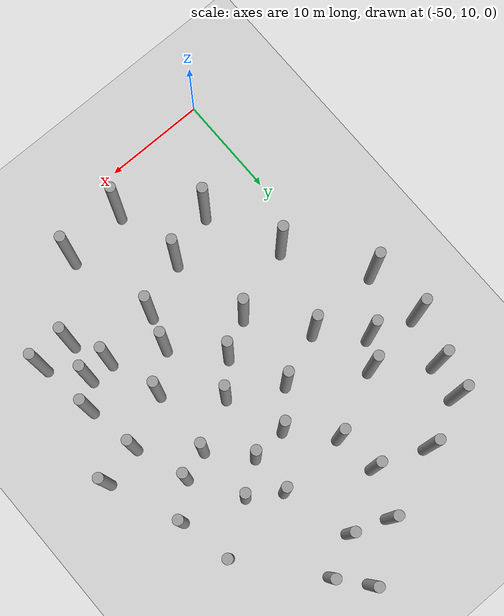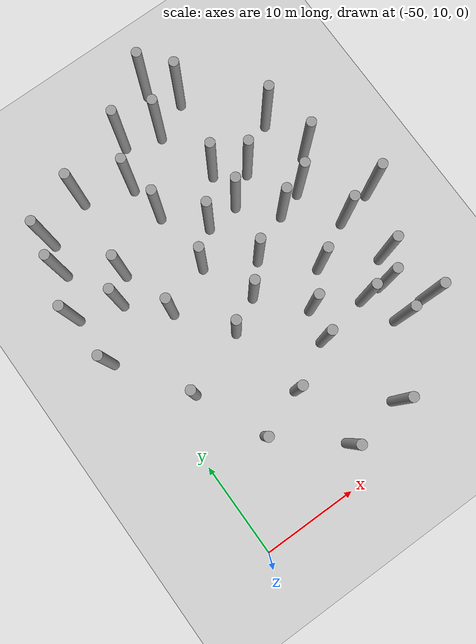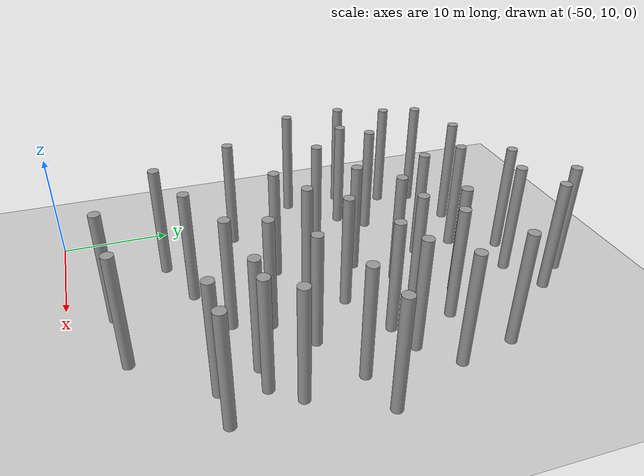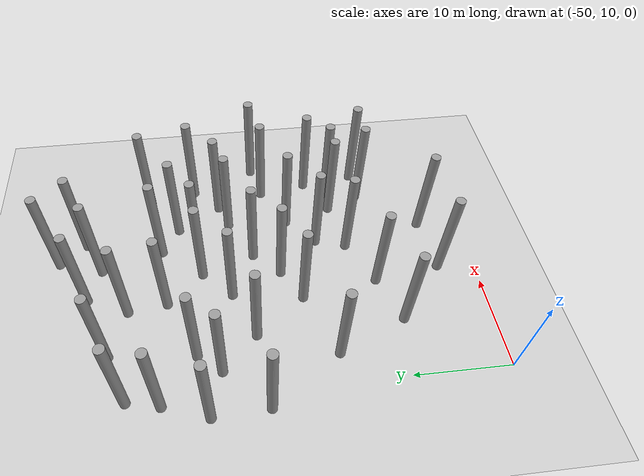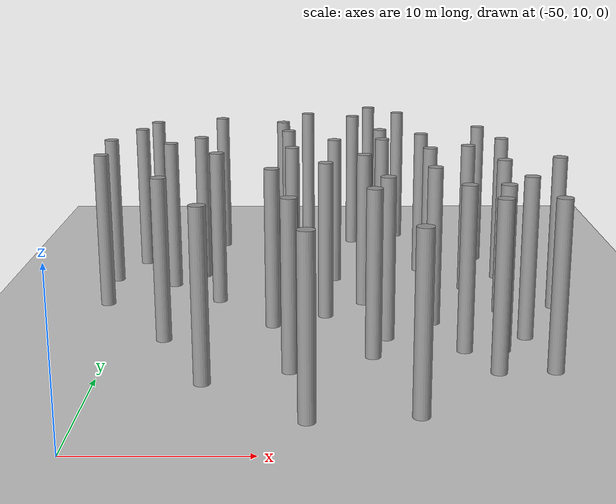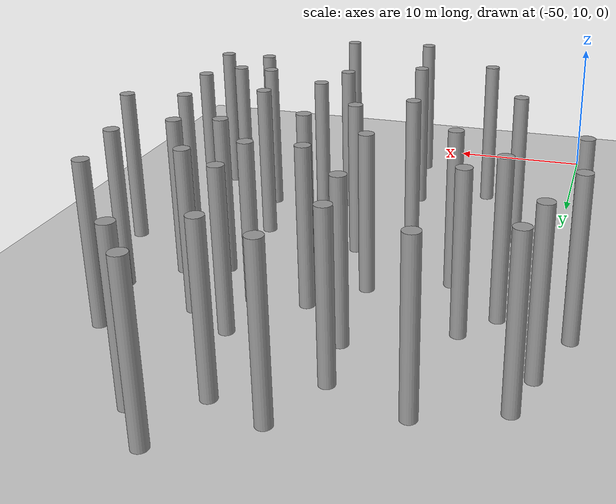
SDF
<sdf version="1.6">
 <world name="vrc_task_1">
  <model name="ground_plane">
   <static>1</static>
   <link name="link">
    <collision name="collision">
     <geometry><plane><normal>0 0 1</normal><size>100 100</size></plane></geometry>
     <surface><friction><ode><mu>100</mu><mu2>50</mu2></ode></friction></surface>
    </collision>
    <visual name="visual">
     <cast_shadows>0</cast_shadows>
     <geometry><plane><normal>0 0 1</normal><size>1000 1000</size></plane></geometry>
     <material>
      <script><uri>file://media/materials/scripts/gazebo.material</uri><name>Gazebo/Grey</name></script>
     </material>
    </visual>
    <velocity_decay><linear>0</linear><angular>0</angular></velocity_decay>
   </link>
  </model>
  <scene>
   <ambient>0.2 0.2 0.2 1</ambient>
   <grid>0</grid>
   <background>0.7 0.7 0.7 1</background>
   <shadows>1</shadows>
  </scene>
  <physics name="default_physics" default="0" type="ode">
   <ode>
    <solver>
     <type>quick</type>
     <iters>50</iters>
     <sor>1.4</sor>
     <use_dynamic_moi_rescaling>0</use_dynamic_moi_rescaling>
    </solver>
    <constraints>
     <cfm>0</cfm>
     <erp>0.2</erp>
     <contact_max_correcting_vel>100</contact_max_correcting_vel>
     <contact_surface_layer>0</contact_surface_layer>
    </constraints>
   </ode>
   <real_time_update_rate>1000</real_time_update_rate>
   <max_step_size>0.001</max_step_size>
   <real_time_factor>1</real_time_factor>
  </physics>
  <light name="sun" type="directional">
   <cast_shadows>0</cast_shadows>
   <pose>0 0 100 0 -0 0</pose>
   <diffuse>0.8 0.8 0.8 1</diffuse>
   <specular>0.9 0.9 0.9 1</specular>
   <attenuation>
    <range>1000</range>
    <constant>0.9</constant>
    <linear>0.01</linear>
    <quadratic>0.001</quadratic>
   </attenuation>
   <direction>0.2 0.2 -0.9</direction>
  </light>
  <model name="road_boxes">
   <static>1</static>
   <link name="link">
    <collision name="collision_1">
     <pose>51 0 0 0 -0 0</pose>
     <geometry><box><size>102 7.34 0.02</size></box></geometry>
     <surface><friction><ode><mu>100</mu><mu2>50</mu2></ode></friction></surface>
    </collision>
    <collision name="collision_2">
     <pose>125 25 0 0 -0 0.78539</pose>
     <geometry><box><size>72 7.34 0.02</size></box></geometry>
     <surface><friction><ode><mu>100</mu><mu2>50</mu2></ode></friction></surface>
    </collision>
    <collision name="collision_3">
     <pose>150 75 0 0 -0 0</pose>
     <geometry><box><size>7.34 53 0.02</size></box></geometry>
     <surface><friction><ode><mu>100</mu><mu2>50</mu2></ode></friction></surface>
    </collision>
    <collision name="collision_4">
     <pose>173.5 100 0 0 -0 0</pose>
     <geometry><box><size>54.5 7.34 0.02</size></box></geometry>
     <surface><friction><ode><mu>100</mu><mu2>50</mu2></ode></friction></surface>
    </collision>
    <collision name="collision_5">
     <pose>198 106 0 0 -0 0</pose>
     <geometry><box><size>6 5 0.02</size></box></geometry>
     <surface><friction><ode><mu>100</mu><mu2>50</mu2></ode></friction></surface>
    </collision>
   </link>
  </model>
  <gravity>0 0 -9.81</gravity>
  <magnetic_field>6e-06 2.3e-05 -4.2e-05</magnetic_field>
  <atmosphere type="adiabatic"/>
  <spherical_coordinates>
   <surface_model>EARTH_WGS84</surface_model>
   <latitude_deg>0</latitude_deg>
   <longitude_deg>0</longitude_deg>
   <elevation>0</elevation>
   <heading_deg>0</heading_deg>
  </spherical_coordinates>
  <model name="unit_cylinder_0">
   <pose>-22.9876 21.0141 5.29387 0 0 -0.003314</pose>
   <link name="link">
    <inertial>
     <mass>1</mass>
     <inertia><ixx>0.145833</ixx><ixy>0</ixy><ixz>0</ixz><iyy>0.145833</iyy><iyz>0</iyz><izz>0.125</izz></inertia>
    </inertial>
    <collision name="collision">
     <geometry><cylinder><radius>0.5</radius><length>10.5878</length></cylinder></geometry>
    </collision>
    <visual name="visual">
     <geometry><cylinder><radius>0.5</radius><length>10.5878</length></cylinder></geometry>
     <material>
      <script><name>Gazebo/Grey</name><uri>file://media/materials/scripts/gazebo.material</uri></script>
     </material>
    </visual>
   </link>
  </model>
  <model name="unit_cylinder_0_clone">
   <pose>-26.3539 20.884 5.2939 0 0 -0.003554</pose>
   <link name="link">
    <inertial>
     <mass>1</mass>
     <inertia><ixx>0.145833</ixx><ixy>0</ixy><ixz>0</ixz><iyy>0.145833</iyy><iyz>0</iyz><izz>0.125</izz></inertia>
    </inertial>
    <collision name="collision">
     <geometry><cylinder><radius>0.5</radius><length>10.5878</length></cylinder></geometry>
    </collision>
    <visual name="visual">
     <geometry><cylinder><radius>0.5</radius><length>10.5878</length></cylinder></geometry>
     <material>
      <script><name>Gazebo/Grey</name><uri>file://media/materials/scripts/gazebo.material</uri></script>
     </material>
    </visual>
   </link>
  </model>
  <model name="unit_cylinder_0_clone_0">
   <pose>-25.5903 24.5493 5.29389 0 0 -0.003437</pose>
   <link name="link">
    <inertial>
     <mass>1</mass>
     <inertia><ixx>0.145833</ixx><ixy>0</ixy><ixz>0</ixz><iyy>0.145833</iyy><iyz>0</iyz><izz>0.125</izz></inertia>
    </inertial>
    <collision name="collision">
     <geometry><cylinder><radius>0.5</radius><length>10.5878</length></cylinder></geometry>
    </collision>
    <visual name="visual">
     <geometry><cylinder><radius>0.5</radius><length>10.5878</length></cylinder></geometry>
     <material>
      <script><name>Gazebo/Grey</name><uri>file://media/materials/scripts/gazebo.material</uri></script>
     </material>
    </visual>
   </link>
  </model>
  <model name="unit_cylinder_0_clone_1">
   <pose>-27.9608 24.4871 5.2939 0 0 -0.003528</pose>
   <link name="link">
    <inertial>
     <mass>1</mass>
     <inertia><ixx>0.145833</ixx><ixy>0</ixy><ixz>0</ixz><iyy>0.145833</iyy><iyz>0</iyz><izz>0.125</izz></inertia>
    </inertial>
    <collision name="collision">
     <geometry><cylinder><radius>0.5</radius><length>10.5878</length></cylinder></geometry>
    </collision>
    <visual name="visual">
     <geometry><cylinder><radius>0.5</radius><length>10.5878</length></cylinder></geometry>
     <material>
      <script><name>Gazebo/Grey</name><uri>file://media/materials/scripts/gazebo.material</uri></script>
     </material>
    </visual>
   </link>
  </model>
  <model name="unit_cylinder_0_clone_2">
   <pose>-23.7982 26.8468 5.2939 0 0 -0.003634</pose>
   <link name="link">
    <inertial>
     <mass>1</mass>
     <inertia><ixx>0.145833</ixx><ixy>0</ixy><ixz>0</ixz><iyy>0.145833</iyy><iyz>0</iyz><izz>0.125</izz></inertia>
    </inertial>
    <collision name="collision">
     <geometry><cylinder><radius>0.5</radius><length>10.5878</length></cylinder></geometry>
    </collision>
    <visual name="visual">
     <geometry><cylinder><radius>0.5</radius><length>10.5878</length></cylinder></geometry>
     <material>
      <script><name>Gazebo/Grey</name><uri>file://media/materials/scripts/gazebo.material</uri></script>
     </material>
    </visual>
   </link>
  </model>
  <model name="unit_cylinder_0_clone_3">
   <pose>-33.6825 23.513 5.2939 0 0 -0.00354</pose>
   <link name="link">
    <inertial>
     <mass>1</mass>
     <inertia><ixx>0.145833</ixx><ixy>0</ixy><ixz>0</ixz><iyy>0.145833</iyy><iyz>0</iyz><izz>0.125</izz></inertia>
    </inertial>
    <collision name="collision">
     <geometry><cylinder><radius>0.5</radius><length>10.5878</length></cylinder></geometry>
    </collision>
    <visual name="visual">
     <geometry><cylinder><radius>0.5</radius><length>10.5878</length></cylinder></geometry>
     <material>
      <script><name>Gazebo/Grey</name><uri>file://media/materials/scripts/gazebo.material</uri></script>
     </material>
    </visual>
   </link>
  </model>
  <model name="unit_cylinder_0_clone_4">
   <pose>-32.6982 26.7672 5.2939 0 0 -0.00327</pose>
   <link name="link">
    <inertial>
     <mass>1</mass>
     <inertia><ixx>0.145833</ixx><ixy>0</ixy><ixz>0</ixz><iyy>0.145833</iyy><iyz>0</iyz><izz>0.125</izz></inertia>
    </inertial>
    <collision name="collision">
     <geometry><cylinder><radius>0.5</radius><length>10.5878</length></cylinder></geometry>
    </collision>
    <visual name="visual">
     <geometry><cylinder><radius>0.5</radius><length>10.5878</length></cylinder></geometry>
     <material>
      <script><name>Gazebo/Grey</name><uri>file://media/materials/scripts/gazebo.material</uri></script>
     </material>
    </visual>
   </link>
  </model>
  <model name="unit_cylinder_0_clone_5">
   <pose>-29.5022 29.7005 5.29389 0 0 -0.003437</pose>
   <link name="link">
    <inertial>
     <mass>1</mass>
     <inertia><ixx>0.145833</ixx><ixy>0</ixy><ixz>0</ixz><iyy>0.145833</iyy><iyz>0</iyz><izz>0.125</izz></inertia>
    </inertial>
    <collision name="collision">
     <geometry><cylinder><radius>0.5</radius><length>10.5878</length></cylinder></geometry>
    </collision>
    <visual name="visual">
     <geometry><cylinder><radius>0.5</radius><length>10.5878</length></cylinder></geometry>
     <material>
      <script><name>Gazebo/Grey</name><uri>file://media/materials/scripts/gazebo.material</uri></script>
     </material>
    </visual>
   </link>
  </model>
  <model name="unit_cylinder_0_clone_6">
   <pose>-24.6878 32.1207 5.2939 0 0 -0.003766</pose>
   <link name="link">
    <inertial>
     <mass>1</mass>
     <inertia><ixx>0.145833</ixx><ixy>0</ixy><ixz>0</ixz><iyy>0.145833</iyy><iyz>0</iyz><izz>0.125</izz></inertia>
    </inertial>
    <collision name="collision">
     <geometry><cylinder><radius>0.5</radius><length>10.5878</length></cylinder></geometry>
    </collision>
    <visual name="visual">
     <geometry><cylinder><radius>0.5</radius><length>10.5878</length></cylinder></geometry>
     <material>
      <script><name>Gazebo/Grey</name><uri>file://media/materials/scripts/gazebo.material</uri></script>
     </material>
    </visual>
   </link>
  </model>
  <model name="unit_cylinder_0_clone_7">
   <pose>-29.2495 36.3199 5.29389 0 0 -0.003343</pose>
   <link name="link">
    <inertial>
     <mass>1</mass>
     <inertia><ixx>0.145833</ixx><ixy>0</ixy><ixz>0</ixz><iyy>0.145833</iyy><iyz>0</iyz><izz>0.125</izz></inertia>
    </inertial>
    <collision name="collision">
     <geometry><cylinder><radius>0.5</radius><length>10.5878</length></cylinder></geometry>
    </collision>
    <visual name="visual">
     <geometry><cylinder><radius>0.5</radius><length>10.5878</length></cylinder></geometry>
     <material>
      <script><name>Gazebo/Grey</name><uri>file://media/materials/scripts/gazebo.material</uri></script>
     </material>
    </visual>
   </link>
  </model>
  <model name="unit_cylinder_0_clone_8">
   <pose>-33.95 33.91 5.29389 0 0 -0.004532</pose>
   <link name="link">
    <inertial>
     <mass>1</mass>
     <inertia><ixx>0.145833</ixx><ixy>0</ixy><ixz>0</ixz><iyy>0.145833</iyy><iyz>0</iyz><izz>0.125</izz></inertia>
    </inertial>
    <collision name="collision">
     <geometry><cylinder><radius>0.5</radius><length>10.5878</length></cylinder></geometry>
    </collision>
    <visual name="visual">
     <geometry><cylinder><radius>0.5</radius><length>10.5878</length></cylinder></geometry>
     <material>
      <script><name>Gazebo/Grey</name><uri>file://media/materials/scripts/gazebo.material</uri></script>
     </material>
    </visual>
   </link>
  </model>
  <model name="unit_cylinder_0_clone_9">
   <pose>-40.0416 29.2003 5.2939 0 0 -0.003335</pose>
   <link name="link">
    <inertial>
     <mass>1</mass>
     <inertia><ixx>0.145833</ixx><ixy>0</ixy><ixz>0</ixz><iyy>0.145833</iyy><iyz>0</iyz><izz>0.125</izz></inertia>
    </inertial>
    <collision name="collision">
     <geometry><cylinder><radius>0.5</radius><length>10.5878</length></cylinder></geometry>
    </collision>
    <visual name="visual">
     <geometry><cylinder><radius>0.5</radius><length>10.5878</length></cylinder></geometry>
     <material>
      <script><name>Gazebo/Grey</name><uri>file://media/materials/scripts/gazebo.material</uri></script>
     </material>
    </visual>
   </link>
  </model>
  <model name="unit_cylinder_0_clone_10">
   <pose>-38.7046 21.1244 5.29389 0 0 -0.003339</pose>
   <link name="link">
    <inertial>
     <mass>1</mass>
     <inertia><ixx>0.145833</ixx><ixy>0</ixy><ixz>0</ixz><iyy>0.145833</iyy><iyz>0</iyz><izz>0.125</izz></inertia>
    </inertial>
    <collision name="collision">
     <geometry><cylinder><radius>0.5</radius><length>10.5878</length></cylinder></geometry>
    </collision>
    <visual name="visual">
     <geometry><cylinder><radius>0.5</radius><length>10.5878</length></cylinder></geometry>
     <material>
      <script><name>Gazebo/Grey</name><uri>file://media/materials/scripts/gazebo.material</uri></script>
     </material>
    </visual>
   </link>
  </model>
  <model name="unit_cylinder_0_clone_11">
   <pose>-31.4633 14.6521 5.2939 0 0 -0.003712</pose>
   <link name="link">
    <inertial>
     <mass>1</mass>
     <inertia><ixx>0.145833</ixx><ixy>0</ixy><ixz>0</ixz><iyy>0.145833</iyy><iyz>0</iyz><izz>0.125</izz></inertia>
    </inertial>
    <collision name="collision">
     <geometry><cylinder><radius>0.5</radius><length>10.5878</length></cylinder></geometry>
    </collision>
    <visual name="visual">
     <geometry><cylinder><radius>0.5</radius><length>10.5878</length></cylinder></geometry>
     <material>
      <script><name>Gazebo/Grey</name><uri>file://media/materials/scripts/gazebo.material</uri></script>
     </material>
    </visual>
   </link>
  </model>
  <model name="unit_cylinder_0_clone_12">
   <pose>-37.608 14.0337 5.2939 0 0 -0.003331</pose>
   <link name="link">
    <inertial>
     <mass>1</mass>
     <inertia><ixx>0.145833</ixx><ixy>0</ixy><ixz>0</ixz><iyy>0.145833</iyy><iyz>0</iyz><izz>0.125</izz></inertia>
    </inertial>
    <collision name="collision">
     <geometry><cylinder><radius>0.5</radius><length>10.5878</length></cylinder></geometry>
    </collision>
    <visual name="visual">
     <geometry><cylinder><radius>0.5</radius><length>10.5878</length></cylinder></geometry>
     <material>
      <script><name>Gazebo/Grey</name><uri>file://media/materials/scripts/gazebo.material</uri></script>
     </material>
    </visual>
   </link>
  </model>
  <model name="unit_cylinder_0_clone_13">
   <pose>-43.7298 19.2916 5.29389 0 0 -0.003654</pose>
   <link name="link">
    <inertial>
     <mass>1</mass>
     <inertia><ixx>0.145833</ixx><ixy>0</ixy><ixz>0</ixz><iyy>0.145833</iyy><iyz>0</iyz><izz>0.125</izz></inertia>
    </inertial>
    <collision name="collision">
     <geometry><cylinder><radius>0.5</radius><length>10.5878</length></cylinder></geometry>
    </collision>
    <visual name="visual">
     <geometry><cylinder><radius>0.5</radius><length>10.5878</length></cylinder></geometry>
     <material>
      <script><name>Gazebo/Grey</name><uri>file://media/materials/scripts/gazebo.material</uri></script>
     </material>
    </visual>
   </link>
  </model>
  <model name="unit_cylinder_0_clone_14">
   <pose>-46.892 26.5243 5.29389 0 0 -0.003405</pose>
   <link name="link">
    <inertial>
     <mass>1</mass>
     <inertia><ixx>0.145833</ixx><ixy>0</ixy><ixz>0</ixz><iyy>0.145833</iyy><iyz>0</iyz><izz>0.125</izz></inertia>
    </inertial>
    <collision name="collision">
     <geometry><cylinder><radius>0.5</radius><length>10.5878</length></cylinder></geometry>
    </collision>
    <visual name="visual">
     <geometry><cylinder><radius>0.5</radius><length>10.5878</length></cylinder></geometry>
     <material>
      <script><name>Gazebo/Grey</name><uri>file://media/materials/scripts/gazebo.material</uri></script>
     </material>
    </visual>
   </link>
  </model>
  <model name="unit_cylinder_0_clone_15">
   <pose>-38.9123 36.5408 5.29389 0 0 -0.003242</pose>
   <link name="link">
    <inertial>
     <mass>1</mass>
     <inertia><ixx>0.145833</ixx><ixy>0</ixy><ixz>0</ixz><iyy>0.145833</iyy><iyz>0</iyz><izz>0.125</izz></inertia>
    </inertial>
    <collision name="collision">
     <geometry><cylinder><radius>0.5</radius><length>10.5878</length></cylinder></geometry>
    </collision>
    <visual name="visual">
     <geometry><cylinder><radius>0.5</radius><length>10.5878</length></cylinder></geometry>
     <material>
      <script><name>Gazebo/Grey</name><uri>file://media/materials/scripts/gazebo.material</uri></script>
     </material>
    </visual>
   </link>
  </model>
  <model name="unit_cylinder_0_clone_16">
   <pose>-44.0059 34.4631 5.2939 0 0 -0.003384</pose>
   <link name="link">
    <inertial>
     <mass>1</mass>
     <inertia><ixx>0.145833</ixx><ixy>0</ixy><ixz>0</ixz><iyy>0.145833</iyy><iyz>0</iyz><izz>0.125</izz></inertia>
    </inertial>
    <collision name="collision">
     <geometry><cylinder><radius>0.5</radius><length>10.5878</length></cylinder></geometry>
    </collision>
    <visual name="visual">
     <geometry><cylinder><radius>0.5</radius><length>10.5878</length></cylinder></geometry>
     <material>
      <script><name>Gazebo/Grey</name><uri>file://media/materials/scripts/gazebo.material</uri></script>
     </material>
    </visual>
   </link>
  </model>
  <model name="unit_cylinder_0_clone_17">
   <pose>-29.4286 41.9938 5.2939 0 0 -0.003487</pose>
   <link name="link">
    <inertial>
     <mass>1</mass>
     <inertia><ixx>0.145833</ixx><ixy>0</ixy><ixz>0</ixz><iyy>0.145833</iyy><iyz>0</iyz><izz>0.125</izz></inertia>
    </inertial>
    <collision name="collision">
     <geometry><cylinder><radius>0.5</radius><length>10.5878</length></cylinder></geometry>
    </collision>
    <visual name="visual">
     <geometry><cylinder><radius>0.5</radius><length>10.5878</length></cylinder></geometry>
     <material>
      <script><name>Gazebo/Grey</name><uri>file://media/materials/scripts/gazebo.material</uri></script>
     </material>
    </visual>
   </link>
  </model>
  <model name="unit_cylinder_0_clone_18">
   <pose>-23.7082 40.039 5.2939 0 0 -0.003486</pose>
   <link name="link">
    <inertial>
     <mass>1</mass>
     <inertia><ixx>0.145833</ixx><ixy>0</ixy><ixz>0</ixz><iyy>0.145833</iyy><iyz>0</iyz><izz>0.125</izz></inertia>
    </inertial>
    <collision name="collision">
     <geometry><cylinder><radius>0.5</radius><length>10.5878</length></cylinder></geometry>
    </collision>
    <visual name="visual">
     <geometry><cylinder><radius>0.5</radius><length>10.5878</length></cylinder></geometry>
     <material>
      <script><name>Gazebo/Grey</name><uri>file://media/materials/scripts/gazebo.material</uri></script>
     </material>
    </visual>
   </link>
  </model>
  <model name="unit_cylinder_0_clone_19">
   <pose>-26.4795 37.2838 5.2939 0 0 -0.003356</pose>
   <link name="link">
    <inertial>
     <mass>1</mass>
     <inertia><ixx>0.145833</ixx><ixy>0</ixy><ixz>0</ixz><iyy>0.145833</iyy><iyz>0</iyz><izz>0.125</izz></inertia>
    </inertial>
    <collision name="collision">
     <geometry><cylinder><radius>0.5</radius><length>10.5878</length></cylinder></geometry>
    </collision>
    <visual name="visual">
     <geometry><cylinder><radius>0.5</radius><length>10.5878</length></cylinder></geometry>
     <material>
      <script><name>Gazebo/Grey</name><uri>file://media/materials/scripts/gazebo.material</uri></script>
     </material>
    </visual>
   </link>
  </model>
  <model name="unit_cylinder_0_clone_20">
   <pose>-20.8232 33.0292 5.2939 0 0 -0.003607</pose>
   <link name="link">
    <inertial>
     <mass>1</mass>
     <inertia><ixx>0.145833</ixx><ixy>0</ixy><ixz>0</ixz><iyy>0.145833</iyy><iyz>0</iyz><izz>0.125</izz></inertia>
    </inertial>
    <collision name="collision">
     <geometry><cylinder><radius>0.5</radius><length>10.5878</length></cylinder></geometry>
    </collision>
    <visual name="visual">
     <geometry><cylinder><radius>0.5</radius><length>10.5878</length></cylinder></geometry>
     <material>
      <script><name>Gazebo/Grey</name><uri>file://media/materials/scripts/gazebo.material</uri></script>
     </material>
    </visual>
   </link>
  </model>
  <model name="unit_cylinder_0_clone_21">
   <pose>-32.4474 39.8495 5.29389 0 0 -0.003346</pose>
   <link name="link">
    <inertial>
     <mass>1</mass>
     <inertia><ixx>0.145833</ixx><ixy>0</ixy><ixz>0</ixz><iyy>0.145833</iyy><iyz>0</iyz><izz>0.125</izz></inertia>
    </inertial>
    <collision name="collision">
     <geometry><cylinder><radius>0.5</radius><length>10.5878</length></cylinder></geometry>
    </collision>
    <visual name="visual">
     <geometry><cylinder><radius>0.5</radius><length>10.5878</length></cylinder></geometry>
     <material>
      <script><name>Gazebo/Grey</name><uri>file://media/materials/scripts/gazebo.material</uri></script>
     </material>
    </visual>
   </link>
  </model>
  <model name="unit_cylinder_0_clone_22">
   <pose>-36.58 31.1587 5.2939 0 0 -0.003374</pose>
   <link name="link">
    <inertial>
     <mass>1</mass>
     <inertia><ixx>0.145833</ixx><ixy>0</ixy><ixz>0</ixz><iyy>0.145833</iyy><iyz>0</iyz><izz>0.125</izz></inertia>
    </inertial>
    <collision name="collision">
     <geometry><cylinder><radius>0.5</radius><length>10.5878</length></cylinder></geometry>
    </collision>
    <visual name="visual">
     <geometry><cylinder><radius>0.5</radius><length>10.5878</length></cylinder></geometry>
     <material>
      <script><name>Gazebo/Grey</name><uri>file://media/materials/scripts/gazebo.material</uri></script>
     </material>
    </visual>
   </link>
  </model>
  <model name="unit_cylinder_0_clone_23">
   <pose>-35.9335 39.5511 5.29389 0 0 -0.003257</pose>
   <link name="link">
    <inertial>
     <mass>1</mass>
     <inertia><ixx>0.145833</ixx><ixy>0</ixy><ixz>0</ixz><iyy>0.145833</iyy><iyz>0</iyz><izz>0.125</izz></inertia>
    </inertial>
    <collision name="collision">
     <geometry><cylinder><radius>0.5</radius><length>10.5878</length></cylinder></geometry>
    </collision>
    <visual name="visual">
     <geometry><cylinder><radius>0.5</radius><length>10.5878</length></cylinder></geometry>
     <material>
      <script><name>Gazebo/Grey</name><uri>file://media/materials/scripts/gazebo.material</uri></script>
     </material>
    </visual>
   </link>
  </model>
  <model name="unit_cylinder_0_clone_24">
   <pose>-32.422 43.8758 5.2939 0 0 -0.003259</pose>
   <link name="link">
    <inertial>
     <mass>1</mass>
     <inertia><ixx>0.145833</ixx><ixy>0</ixy><ixz>0</ixz><iyy>0.145833</iyy><iyz>0</iyz><izz>0.125</izz></inertia>
    </inertial>
    <collision name="collision">
     <geometry><cylinder><radius>0.5</radius><length>10.5878</length></cylinder></geometry>
    </collision>
    <visual name="visual">
     <geometry><cylinder><radius>0.5</radius><length>10.5878</length></cylinder></geometry>
     <material>
      <script><name>Gazebo/Grey</name><uri>file://media/materials/scripts/gazebo.material</uri></script>
     </material>
    </visual>
   </link>
  </model>
  <model name="unit_cylinder_0_clone_25">
   <pose>-24.7975 45.1633 5.2939 0 0 -0.003588</pose>
   <link name="link">
    <inertial>
     <mass>1</mass>
     <inertia><ixx>0.145833</ixx><ixy>0</ixy><ixz>0</ixz><iyy>0.145833</iyy><iyz>0</iyz><izz>0.125</izz></inertia>
    </inertial>
    <collision name="collision">
     <geometry><cylinder><radius>0.5</radius><length>10.5878</length></cylinder></geometry>
    </collision>
    <visual name="visual">
     <geometry><cylinder><radius>0.5</radius><length>10.5878</length></cylinder></geometry>
     <material>
      <script><name>Gazebo/Grey</name><uri>file://media/materials/scripts/gazebo.material</uri></script>
     </material>
    </visual>
   </link>
  </model>
  <model name="unit_cylinder_0_clone_26">
   <pose>-45.6647 40.492 5.2939 0 0 -0.003408</pose>
   <link name="link">
    <inertial>
     <mass>1</mass>
     <inertia><ixx>0.145833</ixx><ixy>0</ixy><ixz>0</ixz><iyy>0.145833</iyy><iyz>0</iyz><izz>0.125</izz></inertia>
    </inertial>
    <collision name="collision">
     <geometry><cylinder><radius>0.5</radius><length>10.5878</length></cylinder></geometry>
    </collision>
    <visual name="visual">
     <geometry><cylinder><radius>0.5</radius><length>10.5878</length></cylinder></geometry>
     <material>
      <script><name>Gazebo/Grey</name><uri>file://media/materials/scripts/gazebo.material</uri></script>
     </material>
    </visual>
   </link>
  </model>
  <model name="unit_cylinder_0_clone_27">
   <pose>-39.3414 43.3618 5.29389 0 0 -0.00339</pose>
   <link name="link">
    <inertial>
     <mass>1</mass>
     <inertia><ixx>0.145833</ixx><ixy>0</ixy><ixz>0</ixz><iyy>0.145833</iyy><iyz>0</iyz><izz>0.125</izz></inertia>
    </inertial>
    <collision name="collision">
     <geometry><cylinder><radius>0.5</radius><length>10.5878</length></cylinder></geometry>
    </collision>
    <visual name="visual">
     <geometry><cylinder><radius>0.5</radius><length>10.5878</length></cylinder></geometry>
     <material>
      <script><name>Gazebo/Grey</name><uri>file://media/materials/scripts/gazebo.material</uri></script>
     </material>
    </visual>
   </link>
  </model>
  <model name="unit_cylinder_0_clone_28">
   <pose>-44.867 49.219 5.29389 0 0 -0.003414</pose>
   <link name="link">
    <inertial>
     <mass>1</mass>
     <inertia><ixx>0.145833</ixx><ixy>0</ixy><ixz>0</ixz><iyy>0.145833</iyy><iyz>0</iyz><izz>0.125</izz></inertia>
    </inertial>
    <collision name="collision">
     <geometry><cylinder><radius>0.5</radius><length>10.5878</length></cylinder></geometry>
    </collision>
    <visual name="visual">
     <geometry><cylinder><radius>0.5</radius><length>10.5878</length></cylinder></geometry>
     <material>
      <script><name>Gazebo/Grey</name><uri>file://media/materials/scripts/gazebo.material</uri></script>
     </material>
    </visual>
   </link>
  </model>
  <model name="unit_cylinder_0_clone_29">
   <pose>-34.3507 50.3848 5.2939 0 0 -0.003511</pose>
   <link name="link">
    <inertial>
     <mass>1</mass>
     <inertia><ixx>0.145833</ixx><ixy>0</ixy><ixz>0</ixz><iyy>0.145833</iyy><iyz>0</iyz><izz>0.125</izz></inertia>
    </inertial>
    <collision name="collision">
     <geometry><cylinder><radius>0.5</radius><length>10.5878</length></cylinder></geometry>
    </collision>
    <visual name="visual">
     <geometry><cylinder><radius>0.5</radius><length>10.5878</length></cylinder></geometry>
     <material>
      <script><name>Gazebo/Grey</name><uri>file://media/materials/scripts/gazebo.material</uri></script>
     </material>
    </visual>
   </link>
  </model>
  <model name="unit_cylinder_0_clone_30">
   <pose>-37.9944 51.7112 5.2939 0 0 -0.003357</pose>
   <link name="link">
    <inertial>
     <mass>1</mass>
     <inertia><ixx>0.145833</ixx><ixy>0</ixy><ixz>0</ixz><iyy>0.145833</iyy><iyz>0</iyz><izz>0.125</izz></inertia>
    </inertial>
    <collision name="collision">
     <geometry><cylinder><radius>0.5</radius><length>10.5878</length></cylinder></geometry>
    </collision>
    <visual name="visual">
     <geometry><cylinder><radius>0.5</radius><length>10.5878</length></cylinder></geometry>
     <material>
      <script><name>Gazebo/Grey</name><uri>file://media/materials/scripts/gazebo.material</uri></script>
     </material>
    </visual>
   </link>
  </model>
  <model name="unit_cylinder_0_clone_31">
   <pose>-30.5904 52.2292 5.29389 0 0 -0.003376</pose>
   <link name="link">
    <inertial>
     <mass>1</mass>
     <inertia><ixx>0.145833</ixx><ixy>0</ixy><ixz>0</ixz><iyy>0.145833</iyy><iyz>0</iyz><izz>0.125</izz></inertia>
    </inertial>
    <collision name="collision">
     <geometry><cylinder><radius>0.5</radius><length>10.5878</length></cylinder></geometry>
    </collision>
    <visual name="visual">
     <geometry><cylinder><radius>0.5</radius><length>10.5878</length></cylinder></geometry>
     <material>
      <script><name>Gazebo/Grey</name><uri>file://media/materials/scripts/gazebo.material</uri></script>
     </material>
    </visual>
   </link>
  </model>
  <model name="unit_cylinder_0_clone_32">
   <pose>-32.8801 55.0265 5.2939 0 0 -0.003463</pose>
   <link name="link">
    <inertial>
     <mass>1</mass>
     <inertia><ixx>0.145833</ixx><ixy>0</ixy><ixz>0</ixz><iyy>0.145833</iyy><iyz>0</iyz><izz>0.125</izz></inertia>
    </inertial>
    <collision name="collision">
     <geometry><cylinder><radius>0.5</radius><length>10.5878</length></cylinder></geometry>
    </collision>
    <visual name="visual">
     <geometry><cylinder><radius>0.5</radius><length>10.5878</length></cylinder></geometry>
     <material>
      <script><name>Gazebo/Grey</name><uri>file://media/materials/scripts/gazebo.material</uri></script>
     </material>
    </visual>
   </link>
  </model>
  <model name="unit_cylinder_0_clone_33">
   <pose>-39.8877 47.4226 5.29389 0 0 -0.003284</pose>
   <link name="link">
    <inertial>
     <mass>1</mass>
     <inertia><ixx>0.145833</ixx><ixy>0</ixy><ixz>0</ixz><iyy>0.145833</iyy><iyz>0</iyz><izz>0.125</izz></inertia>
    </inertial>
    <collision name="collision">
     <geometry><cylinder><radius>0.5</radius><length>10.5878</length></cylinder></geometry>
    </collision>
    <visual name="visual">
     <geometry><cylinder><radius>0.5</radius><length>10.5878</length></cylinder></geometry>
     <material>
      <script><name>Gazebo/Grey</name><uri>file://media/materials/scripts/gazebo.material</uri></script>
     </material>
    </visual>
   </link>
  </model>
  <model name="unit_cylinder_0_clone_34">
   <pose>-47.6027 38.1282 5.29389 0 0 -0.003451</pose>
   <link name="link">
    <inertial>
     <mass>1</mass>
     <inertia><ixx>0.145833</ixx><ixy>0</ixy><ixz>0</ixz><iyy>0.145833</iyy><iyz>0</iyz><izz>0.125</izz></inertia>
    </inertial>
    <collision name="collision">
     <geometry><cylinder><radius>0.5</radius><length>10.5878</length></cylinder></geometry>
    </collision>
    <visual name="visual">
     <geometry><cylinder><radius>0.5</radius><length>10.5878</length></cylinder></geometry>
     <material>
      <script><name>Gazebo/Grey</name><uri>file://media/materials/scripts/gazebo.material</uri></script>
     </material>
    </visual>
   </link>
  </model>
  <model name="unit_cylinder_0_clone_35">
   <pose>-51.7684 33.8042 5.2939 0 0 -0.003411</pose>
   <link name="link">
    <inertial>
     <mass>1</mass>
     <inertia><ixx>0.145833</ixx><ixy>0</ixy><ixz>0</ixz><iyy>0.145833</iyy><iyz>0</iyz><izz>0.125</izz></inertia>
    </inertial>
    <collision name="collision">
     <geometry><cylinder><radius>0.5</radius><length>10.5878</length></cylinder></geometry>
    </collision>
    <visual name="visual">
     <geometry><cylinder><radius>0.5</radius><length>10.5878</length></cylinder></geometry>
     <material>
      <script><name>Gazebo/Grey</name><uri>file://media/materials/scripts/gazebo.material</uri></script>
     </material>
    </visual>
   </link>
  </model>
  <model name="unit_cylinder_0_clone_36">
   <pose>-52.0788 39.4816 5.2939 0 0 -0.003333</pose>
   <link name="link">
    <inertial>
     <mass>1</mass>
     <inertia><ixx>0.145833</ixx><ixy>0</ixy><ixz>0</ixz><iyy>0.145833</iyy><iyz>0</iyz><izz>0.125</izz></inertia>
    </inertial>
    <collision name="collision">
     <geometry><cylinder><radius>0.5</radius><length>10.5878</length></cylinder></geometry>
    </collision>
    <visual name="visual">
     <geometry><cylinder><radius>0.5</radius><length>10.5878</length></cylinder></geometry>
     <material>
      <script><name>Gazebo/Grey</name><uri>file://media/materials/scripts/gazebo.material</uri></script>
     </material>
    </visual>
   </link>
  </model>
  <model name="unit_cylinder_0_clone_37">
   <pose>-50.5279 44.0308 5.29389 0 0 -0.003387</pose>
   <link name="link">
    <inertial>
     <mass>1</mass>
     <inertia><ixx>0.145833</ixx><ixy>0</ixy><ixz>0</ixz><iyy>0.145833</iyy><iyz>0</iyz><izz>0.125</izz></inertia>
    </inertial>
    <collision name="collision">
     <geometry><cylinder><radius>0.5</radius><length>10.5878</length></cylinder></geometry>
    </collision>
    <visual name="visual">
     <geometry><cylinder><radius>0.5</radius><length>10.5878</length></cylinder></geometry>
     <material>
      <script><name>Gazebo/Grey</name><uri>file://media/materials/scripts/gazebo.material</uri></script>
     </material>
    </visual>
   </link>
  </model>
  <model name="unit_cylinder_0_clone_38">
   <pose>-49.7891 47.3553 5.29389 0 0 -0.003502</pose>
   <link name="link">
    <inertial>
     <mass>1</mass>
     <inertia><ixx>0.145833</ixx><ixy>0</ixy><ixz>0</ixz><iyy>0.145833</iyy><iyz>0</iyz><izz>0.125</izz></inertia>
    </inertial>
    <collision name="collision">
     <geometry><cylinder><radius>0.5</radius><length>10.5878</length></cylinder></geometry>
    </collision>
    <visual name="visual">
     <geometry><cylinder><radius>0.5</radius><length>10.5878</length></cylinder></geometry>
     <material>
      <script><name>Gazebo/Grey</name><uri>file://media/materials/scripts/gazebo.material</uri></script>
     </material>
    </visual>
   </link>
  </model>
 </world>
</sdf>
